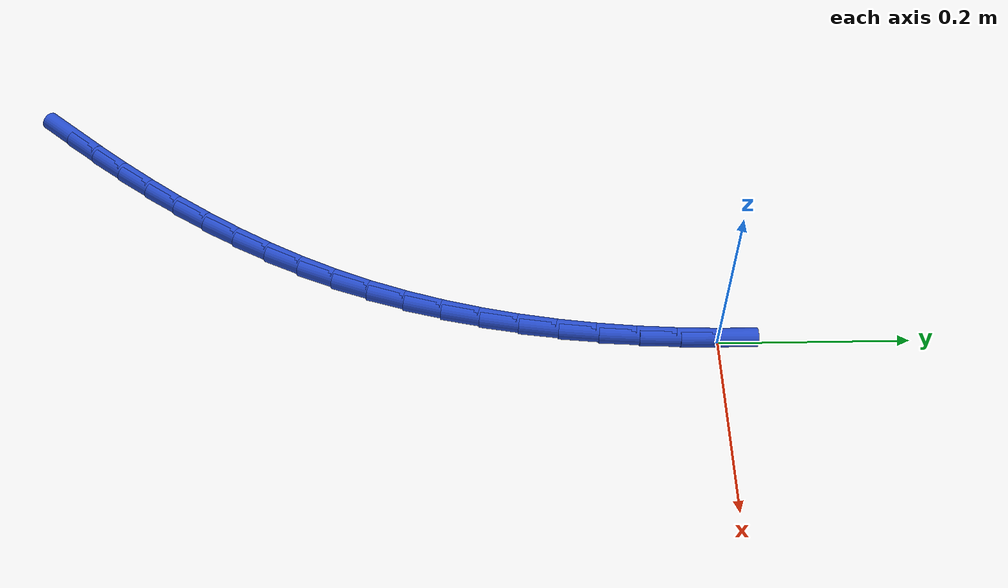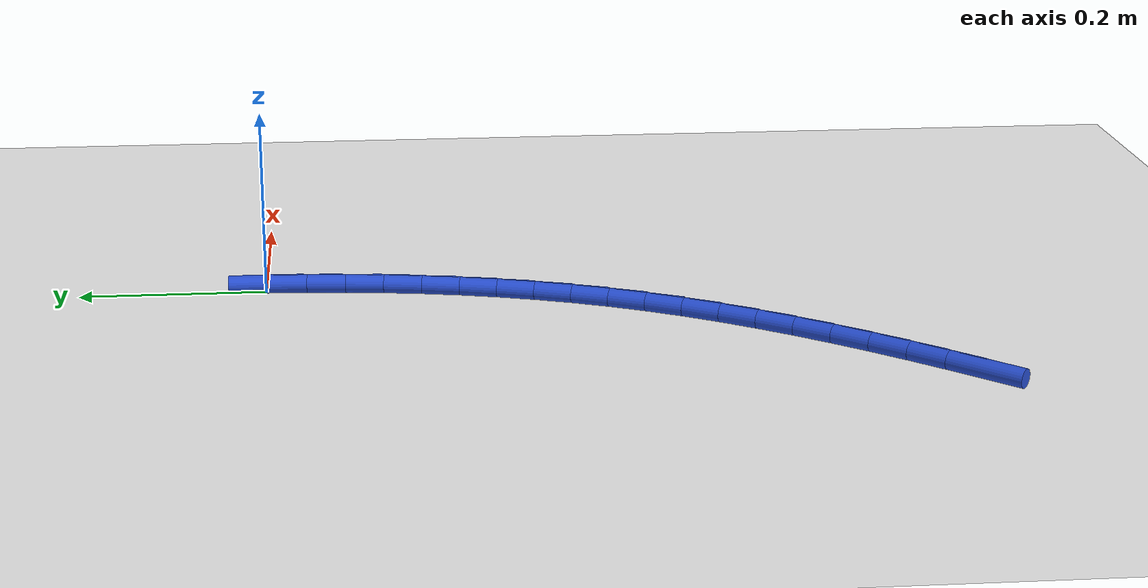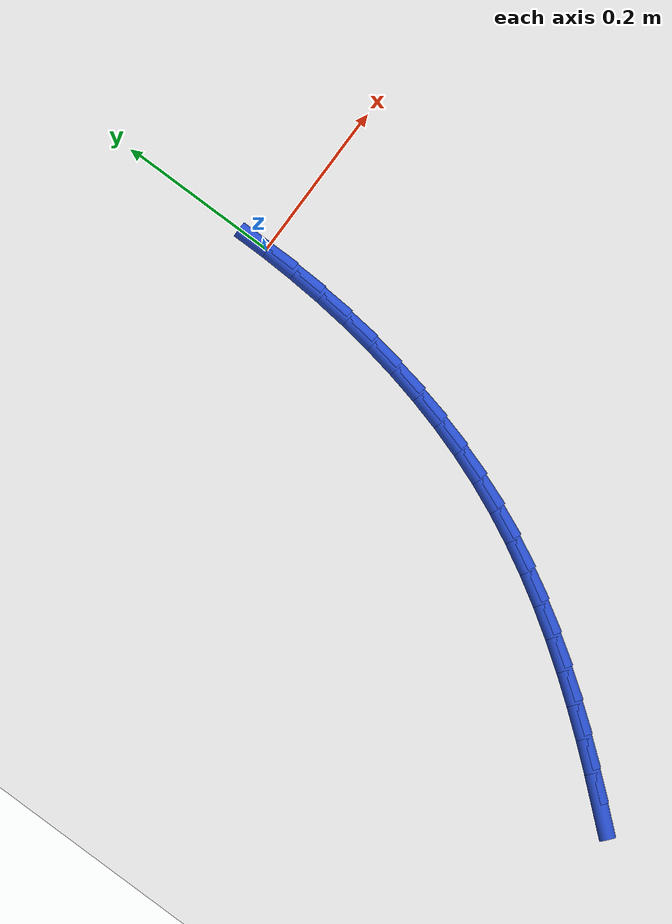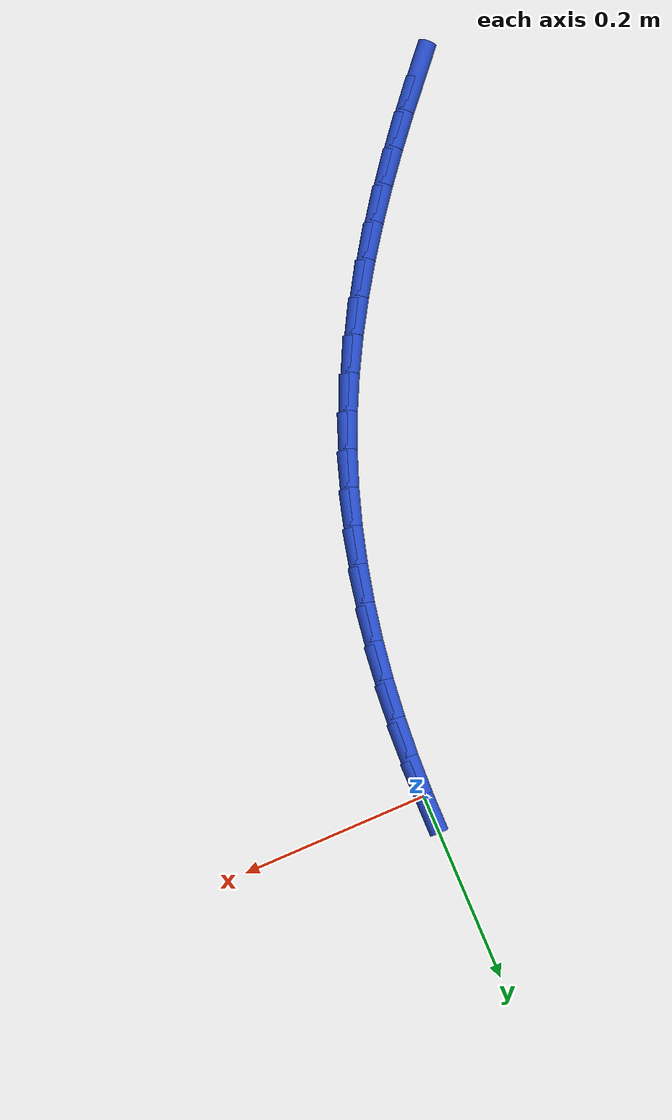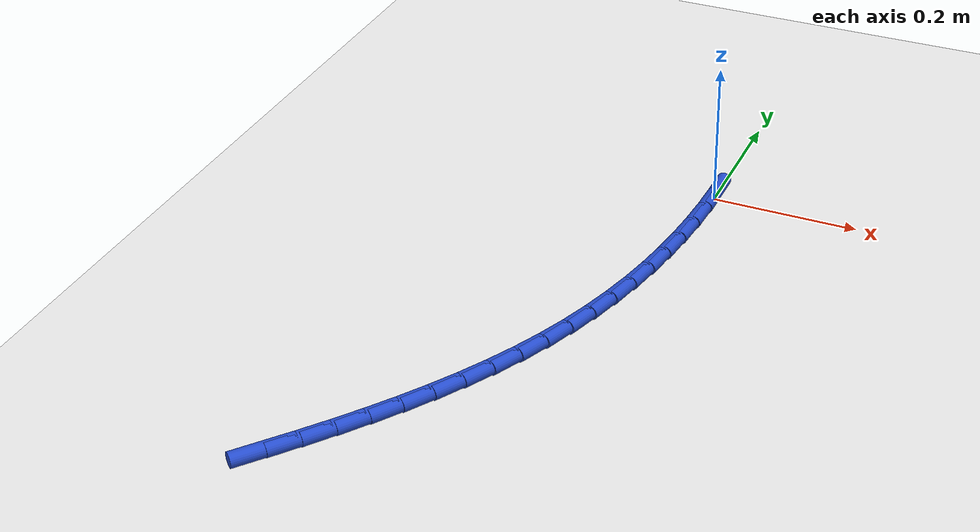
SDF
<sdf version="1.6">
 <world name="default">
  <model name="ground_plane">
   <static>1</static>
   <link name="link">
    <collision name="collision">
     <geometry><plane><normal>0 0 1</normal><size>100 100</size></plane></geometry>
     <surface><friction><ode><mu>100</mu><mu2>50</mu2></ode></friction></surface>
    </collision>
    <visual name="visual">
     <cast_shadows>0</cast_shadows>
     <geometry><plane><normal>0 0 1</normal><size>100 100</size></plane></geometry>
     <material>
      <script><uri>file://media/materials/scripts/gazebo.material</uri><name>Gazebo/WhiteGlow</name></script>
     </material>
    </visual>
   </link>
  </model>
  <model name="line">
   <link name="link_0">
    <pose>2.7755575615628914e-17 6.938893903907228e-17 0.01 0 1.57 1.5689100685673707</pose>
    <collision name="collision">
     <geometry><cylinder><radius>0.01</radius><length>0.08</length></cylinder></geometry>
    </collision>
    <visual name="visual">
     <material>
      <script><name>Gazebo/Blue</name><uri>file://media/materials/scripts/gazebo.material</uri></script>
     </material>
     <geometry><cylinder><radius>0.01</radius><length>0.08</length></cylinder></geometry>
    </visual>
   </link>
   <link name="link_141">
    <pose>-0.2925738792608661 -0.7067423053747147 0.01 0 1.57 0.8606569248522651</pose>
    <collision name="collision">
     <geometry><cylinder><radius>0.01</radius><length>0.08</length></cylinder></geometry>
    </collision>
    <visual name="visual">
     <material>
      <script><name>Gazebo/Blue</name><uri>file://media/materials/scripts/gazebo.material</uri></script>
     </material>
     <geometry><cylinder><radius>0.01</radius><length>0.08</length></cylinder></geometry>
    </visual>
   </link>
   <link name="link_142">
    <pose>-0.2653841141705326 -0.6751178816556963 0.01 0 1.57 0.8811910045305743</pose>
    <collision name="collision">
     <geometry><cylinder><radius>0.01</radius><length>0.08</length></cylinder></geometry>
    </collision>
    <visual name="visual">
     <material>
      <script><name>Gazebo/Blue</name><uri>file://media/materials/scripts/gazebo.material</uri></script>
     </material>
     <geometry><cylinder><radius>0.01</radius><length>0.08</length></cylinder></geometry>
    </visual>
   </link>
   <link name="link_143">
    <pose>-0.23888437215289474 -0.6429842377298732 0.01 0 1.57 0.9048551878884964</pose>
    <collision name="collision">
     <geometry><cylinder><radius>0.01</radius><length>0.08</length></cylinder></geometry>
    </collision>
    <visual name="visual">
     <material>
      <script><name>Gazebo/Blue</name><uri>file://media/materials/scripts/gazebo.material</uri></script>
     </material>
     <geometry><cylinder><radius>0.01</radius><length>0.08</length></cylinder></geometry>
    </visual>
   </link>
   <link name="link_144">
    <pose>-0.21321232800387563 -0.6103088371218954 0.01 0 1.57 0.9317486491109652</pose>
    <collision name="collision">
     <geometry><cylinder><radius>0.01</radius><length>0.08</length></cylinder></geometry>
    </collision>
    <visual name="visual">
     <material>
      <script><name>Gazebo/Blue</name><uri>file://media/materials/scripts/gazebo.material</uri></script>
     </material>
     <geometry><cylinder><radius>0.01</radius><length>0.08</length></cylinder></geometry>
    </visual>
   </link>
   <link name="link_145">
    <pose>-0.18850565651939777 -0.5770591433564123 0.01 0 1.57 0.9619747694832851</pose>
    <collision name="collision">
     <geometry><cylinder><radius>0.01</radius><length>0.08</length></cylinder></geometry>
    </collision>
    <visual name="visual">
     <material>
      <script><name>Gazebo/Blue</name><uri>file://media/materials/scripts/gazebo.material</uri></script>
     </material>
     <geometry><cylinder><radius>0.01</radius><length>0.08</length></cylinder></geometry>
    </visual>
   </link>
   <link name="link_146">
    <pose>-0.16490203249538352 -0.543202619958073 0.01 0 1.57 0.995633103561236</pose>
    <collision name="collision">
     <geometry><cylinder><radius>0.01</radius><length>0.08</length></cylinder></geometry>
    </collision>
    <visual name="visual">
     <material>
      <script><name>Gazebo/Blue</name><uri>file://media/materials/scripts/gazebo.material</uri></script>
     </material>
     <geometry><cylinder><radius>0.01</radius><length>0.08</length></cylinder></geometry>
    </visual>
   </link>
   <link name="link_147">
    <pose>-0.14253913072775642 -0.5087067304515281 0.01 0 1.57 1.0328092798463664</pose>
    <collision name="collision">
     <geometry><cylinder><radius>0.01</radius><length>0.08</length></cylinder></geometry>
    </collision>
    <visual name="visual">
     <material>
      <script><name>Gazebo/Blue</name><uri>file://media/materials/scripts/gazebo.material</uri></script>
     </material>
     <geometry><cylinder><radius>0.01</radius><length>0.08</length></cylinder></geometry>
    </visual>
   </link>
   <link name="link_148">
    <pose>-0.12155462601243872 -0.4735389383614266 0.01 0 1.57 1.0735626533882399</pose>
    <collision name="collision">
     <geometry><cylinder><radius>0.01</radius><length>0.08</length></cylinder></geometry>
    </collision>
    <visual name="visual">
     <material>
      <script><name>Gazebo/Blue</name><uri>file://media/materials/scripts/gazebo.material</uri></script>
     </material>
     <geometry><cylinder><radius>0.01</radius><length>0.08</length></cylinder></geometry>
    </visual>
   </link>
   <link name="link_149">
    <pose>-0.10208619314535312 -0.4376667072124181 0.01 0 1.57 1.1179117963402916</pose>
    <collision name="collision">
     <geometry><cylinder><radius>0.01</radius><length>0.08</length></cylinder></geometry>
    </collision>
    <visual name="visual">
     <material>
      <script><name>Gazebo/Blue</name><uri>file://media/materials/scripts/gazebo.material</uri></script>
     </material>
     <geometry><cylinder><radius>0.01</radius><length>0.08</length></cylinder></geometry>
    </visual>
   </link>
   <link name="link_150">
    <pose>-0.08427150692242236 -0.4010575005291522 0.01 0 1.57 1.165706578301808</pose>
    <collision name="collision">
     <geometry><cylinder><radius>0.01</radius><length>0.08</length></cylinder></geometry>
    </collision>
    <visual name="visual">
     <material>
      <script><name>Gazebo/Blue</name><uri>file://media/materials/scripts/gazebo.material</uri></script>
     </material>
     <geometry><cylinder><radius>0.01</radius><length>0.08</length></cylinder></geometry>
    </visual>
   </link>
   <link name="link_151">
    <pose>-0.06824411878065458 -0.3636806991354143 0.01 0 1.57 1.21434285047455</pose>
    <collision name="collision">
     <geometry><cylinder><radius>0.01</radius><length>0.08</length></cylinder></geometry>
    </collision>
    <visual name="visual">
     <material>
      <script><name>Gazebo/Blue</name><uri>file://media/materials/scripts/gazebo.material</uri></script>
     </material>
     <geometry><cylinder><radius>0.01</radius><length>0.08</length></cylinder></geometry>
    </visual>
   </link>
   <link name="link_152">
    <pose>-0.054045280048787996 -0.3255486020005102 0.01 0 1.57 1.2612464536261976</pose>
    <collision name="collision">
     <geometry><cylinder><radius>0.01</radius><length>0.08</length></cylinder></geometry>
    </collision>
    <visual name="visual">
     <material>
      <script><name>Gazebo/Blue</name><uri>file://media/materials/scripts/gazebo.material</uri></script>
     </material>
     <geometry><cylinder><radius>0.01</radius><length>0.08</length></cylinder></geometry>
    </visual>
   </link>
   <link name="link_153">
    <pose>-0.04162532984980794 -0.2867157808857146 0.01 0 1.57 1.3062411416994348</pose>
    <collision name="collision">
     <geometry><cylinder><radius>0.01</radius><length>0.08</length></cylinder></geometry>
    </collision>
    <visual name="visual">
     <material>
      <script><name>Gazebo/Blue</name><uri>file://media/materials/scripts/gazebo.material</uri></script>
     </material>
     <geometry><cylinder><radius>0.01</radius><length>0.08</length></cylinder></geometry>
    </visual>
   </link>
   <link name="link_154">
    <pose>-0.03093076154826477 -0.247238595771442 0.01 0 1.57 1.3492912340562369</pose>
    <collision name="collision">
     <geometry><cylinder><radius>0.01</radius><length>0.08</length></cylinder></geometry>
    </collision>
    <visual name="visual">
     <material>
      <script><name>Gazebo/Blue</name><uri>file://media/materials/scripts/gazebo.material</uri></script>
     </material>
     <geometry><cylinder><radius>0.01</radius><length>0.08</length></cylinder></geometry>
    </visual>
   </link>
   <link name="link_155">
    <pose>-0.02190806850870883 -0.20717340663810685 0.01 0 1.57 1.3903925093076237</pose>
    <collision name="collision">
     <geometry><cylinder><radius>0.01</radius><length>0.08</length></cylinder></geometry>
    </collision>
    <visual name="visual">
     <material>
      <script><name>Gazebo/Blue</name><uri>file://media/materials/scripts/gazebo.material</uri></script>
     </material>
     <geometry><cylinder><radius>0.01</radius><length>0.08</length></cylinder></geometry>
    </visual>
   </link>
   <link name="link_156">
    <pose>-0.014503744095690373 -0.16657657346612295 0.01 0 1.57 1.429567020835993</pose>
    <collision name="collision">
     <geometry><cylinder><radius>0.01</radius><length>0.08</length></cylinder></geometry>
    </collision>
    <visual name="visual">
     <material>
      <script><name>Gazebo/Blue</name><uri>file://media/materials/scripts/gazebo.material</uri></script>
     </material>
     <geometry><cylinder><radius>0.01</radius><length>0.08</length></cylinder></geometry>
    </visual>
   </link>
   <link name="link_157">
    <pose>-0.008664281673759993 -0.12550445623590628 0.01 0 1.57 1.466857984398609</pose>
    <collision name="collision">
     <geometry><cylinder><radius>0.01</radius><length>0.08</length></cylinder></geometry>
    </collision>
    <visual name="visual">
     <material>
      <script><name>Gazebo/Blue</name><uri>file://media/materials/scripts/gazebo.material</uri></script>
     </material>
     <geometry><cylinder><radius>0.01</radius><length>0.08</length></cylinder></geometry>
    </visual>
   </link>
   <link name="link_158">
    <pose>-0.004336174607467895 -0.08401341492787051 0.01 0 1.57 1.5023250122771519</pose>
    <collision name="collision">
     <geometry><cylinder><radius>0.01</radius><length>0.08</length></cylinder></geometry>
    </collision>
    <visual name="visual">
     <material>
      <script><name>Gazebo/Blue</name><uri>file://media/materials/scripts/gazebo.material</uri></script>
     </material>
     <geometry><cylinder><radius>0.01</radius><length>0.08</length></cylinder></geometry>
    </visual>
   </link>
   <link name="link_159">
    <pose>-0.0014659162613644364 -0.0421598095224302 0.01 0 1.57 1.5360398620712714</pose>
    <collision name="collision">
     <geometry><cylinder><radius>0.01</radius><length>0.08</length></cylinder></geometry>
    </collision>
    <visual name="visual">
     <material>
      <script><name>Gazebo/Blue</name><uri>file://media/materials/scripts/gazebo.material</uri></script>
     </material>
     <geometry><cylinder><radius>0.01</radius><length>0.08</length></cylinder></geometry>
    </visual>
   </link>
  </model>
 </world>
</sdf>
